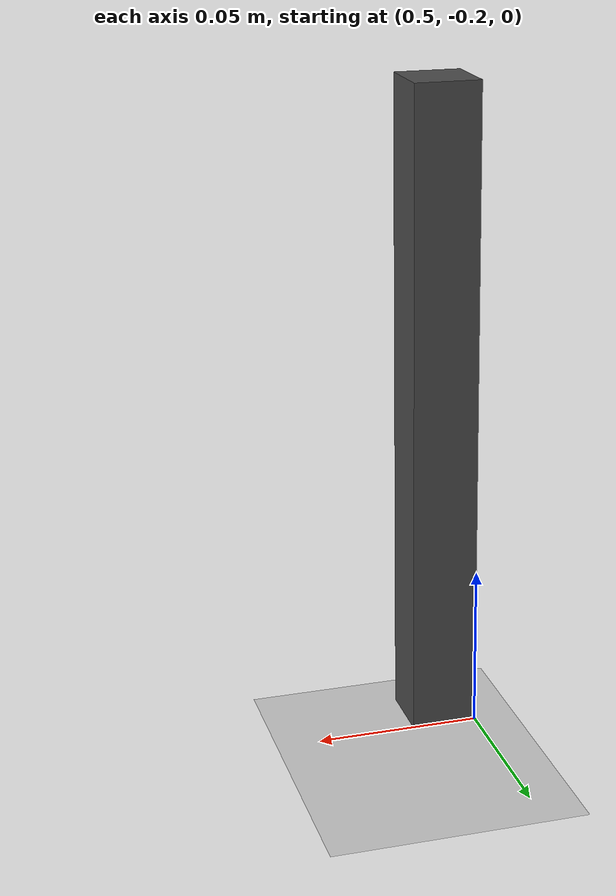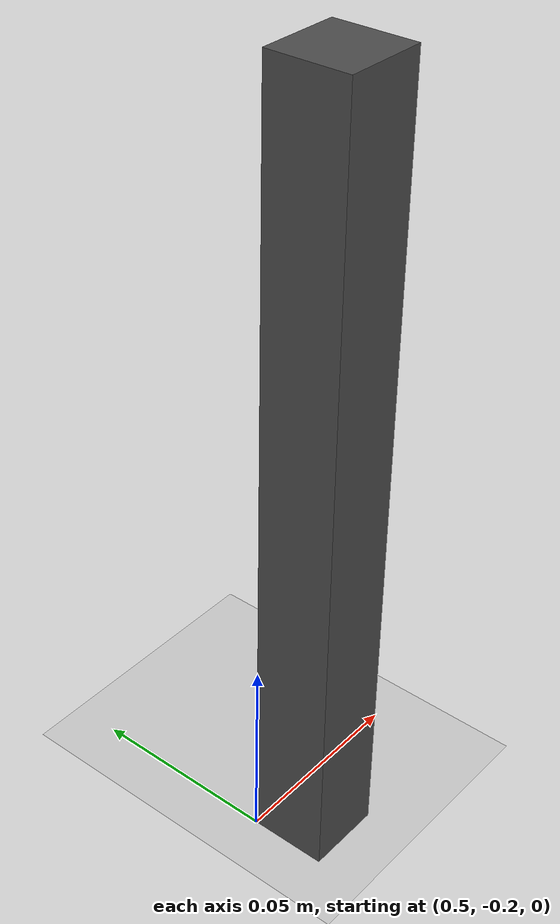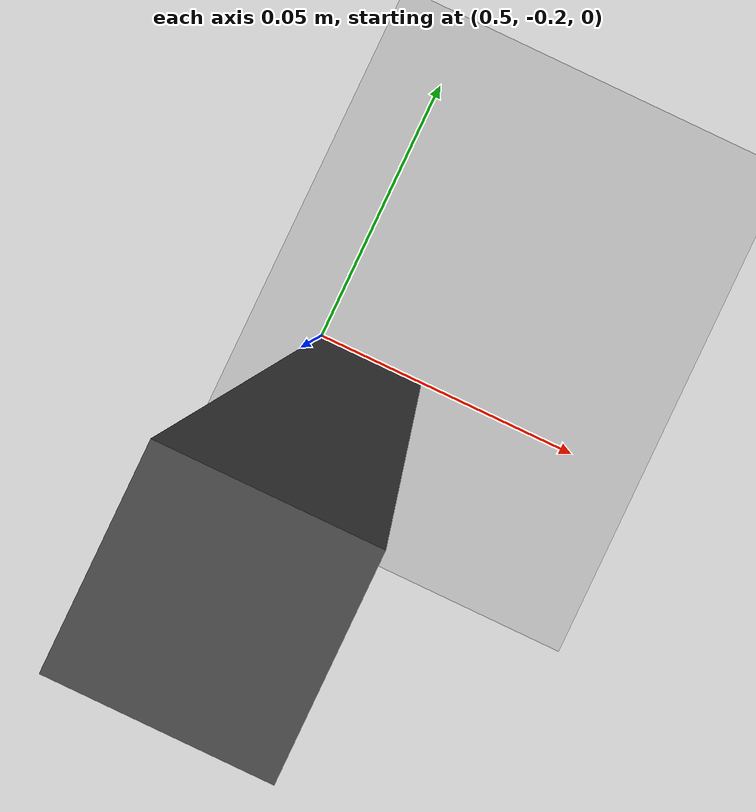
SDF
<?xml version="1.0" ?>
<sdf version="1.5">
  <world name="panda_pick_and_place">
    <!--A global light source-->
    <include>
      <uri>model://sun</uri>
    </include>
    <!--A ground plane-->
    <include>
      <uri>model://ground_plane</uri>
    </include>
    <!--A platform-->

    <!--A cube-->
    <include>
      <uri>model://cube</uri>
      <pose>0.5 -0.22 0 0 0 0</pose>
    </include>
    <!--Camera settings-->
    <gui fullscreen='0'>
      <camera name='user_camera'>
        <pose>1.59801 -1.66211 1.29545 -0 0.419643 2.23219</pose>
        <view_controller>orbit</view_controller>
        <projection_type>orthographic</projection_type>
      </camera>
    </gui>
  </world>
</sdf>

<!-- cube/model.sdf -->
<sdf version='1.7'>
  <model name='cube'>
    <link name='link'>
      <inertial>
        <pose>0.01 0.01 0.1 0 -0 0</pose>
        <!--NOTE: Uses Polyethylene density to calculate the mass
        see https://en.wikipedia.org/wiki/Polyethylene
        -->
        <mass>0.20735999999999996</mass>
        <inertia>
          <ixx>0.00012442</ixx>
          <ixy>0</ixy>
          <ixz>0</ixz>
          <iyy>0.00012442</iyy>
          <iyz>0</iyz>
          <izz>0.00012442</izz>
        </inertia>
      </inertial>
      <visual name='visual'>
        <pose>0.01 0.01 0.1 0 -0 0</pose>
        <geometry>
          <box>
            <size>0.02 0.02 0.20</size>
          </box>
        </geometry>
        <material>
          <script>
            <uri>file://media/materials/scripts/gazebo.material</uri>
            <name>Gazebo/DarkGrey</name>
          </script>
          <shader type='pixel'/>
        </material>
      </visual>
      <collision name='collision'>
        <pose>0.01 0.01 0.1 0 -0 0</pose>
        <geometry>
          <box>
            <size>0.02 0.02 0.2</size>
          </box>
        </geometry>
        <surface>
          <!--NOTE: Used dynamic friction of clean dry plastic cube on a plastic surface
          (i.e. Polyethylene) see https://www.engineeringtoolbox.com/friction-coefficients-d_778.html
          -->
          <friction>
            <ode>
              <mu>0.6</mu>
              <mu2>0.6</mu2>
            </ode>
          </friction>
          <contact>
            <collide_bitmask>1</collide_bitmask>
            <ode>
              <kp>1e+06</kp>
              <kd>1e+06</kd>
              <max_vel>1</max_vel>
              <min_depth>0.002</min_depth>
            </ode>
            <bullet>
              <kp>1e+06</kp>
              <kd>1e+06</kd>
            </bullet>
          </contact>
        </surface>
      </collision>
    </link>
  </model>
</sdf>
